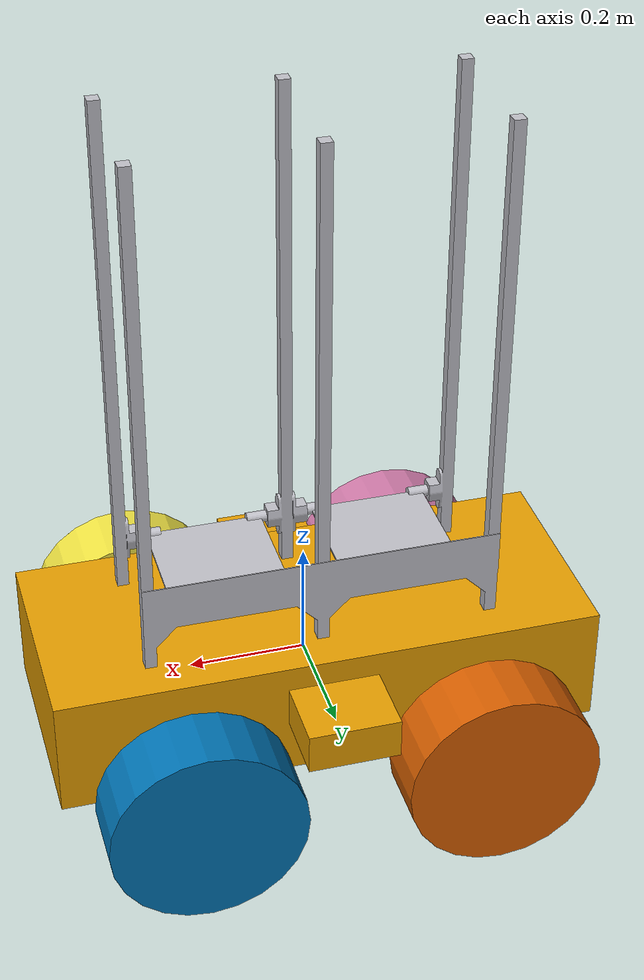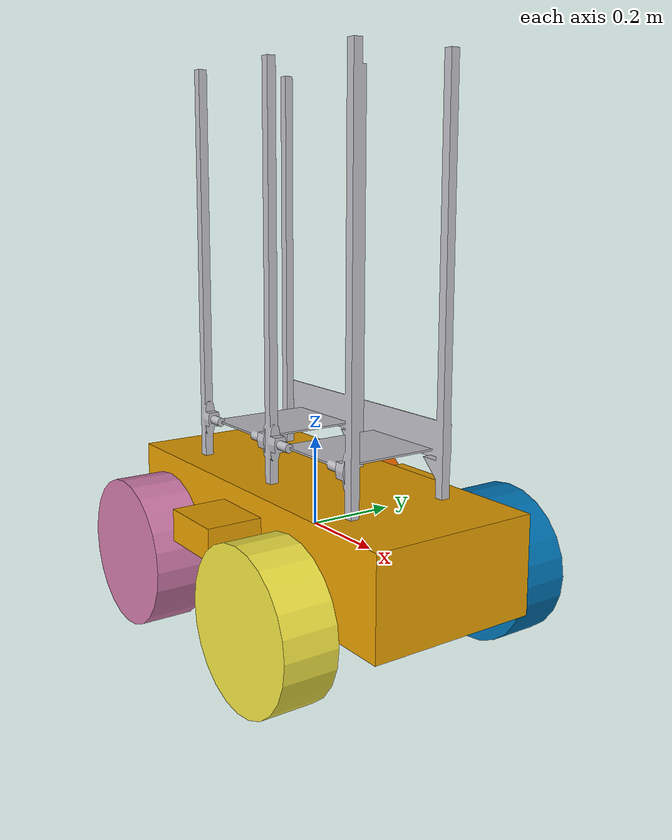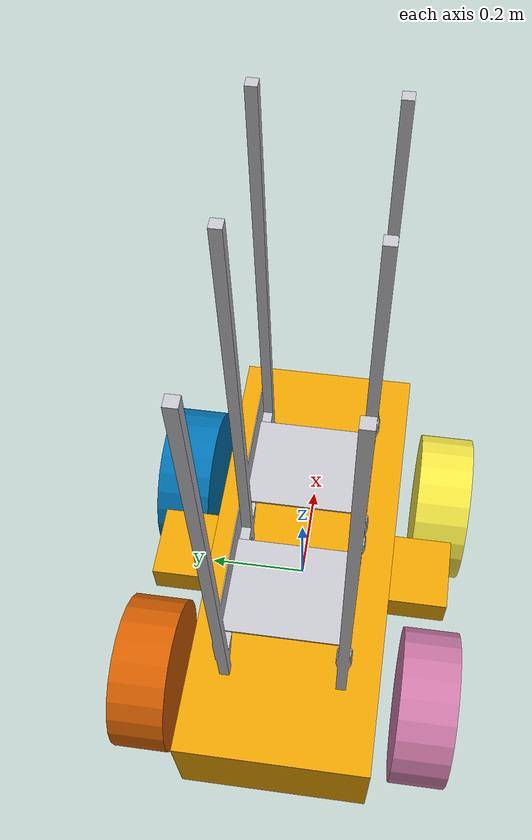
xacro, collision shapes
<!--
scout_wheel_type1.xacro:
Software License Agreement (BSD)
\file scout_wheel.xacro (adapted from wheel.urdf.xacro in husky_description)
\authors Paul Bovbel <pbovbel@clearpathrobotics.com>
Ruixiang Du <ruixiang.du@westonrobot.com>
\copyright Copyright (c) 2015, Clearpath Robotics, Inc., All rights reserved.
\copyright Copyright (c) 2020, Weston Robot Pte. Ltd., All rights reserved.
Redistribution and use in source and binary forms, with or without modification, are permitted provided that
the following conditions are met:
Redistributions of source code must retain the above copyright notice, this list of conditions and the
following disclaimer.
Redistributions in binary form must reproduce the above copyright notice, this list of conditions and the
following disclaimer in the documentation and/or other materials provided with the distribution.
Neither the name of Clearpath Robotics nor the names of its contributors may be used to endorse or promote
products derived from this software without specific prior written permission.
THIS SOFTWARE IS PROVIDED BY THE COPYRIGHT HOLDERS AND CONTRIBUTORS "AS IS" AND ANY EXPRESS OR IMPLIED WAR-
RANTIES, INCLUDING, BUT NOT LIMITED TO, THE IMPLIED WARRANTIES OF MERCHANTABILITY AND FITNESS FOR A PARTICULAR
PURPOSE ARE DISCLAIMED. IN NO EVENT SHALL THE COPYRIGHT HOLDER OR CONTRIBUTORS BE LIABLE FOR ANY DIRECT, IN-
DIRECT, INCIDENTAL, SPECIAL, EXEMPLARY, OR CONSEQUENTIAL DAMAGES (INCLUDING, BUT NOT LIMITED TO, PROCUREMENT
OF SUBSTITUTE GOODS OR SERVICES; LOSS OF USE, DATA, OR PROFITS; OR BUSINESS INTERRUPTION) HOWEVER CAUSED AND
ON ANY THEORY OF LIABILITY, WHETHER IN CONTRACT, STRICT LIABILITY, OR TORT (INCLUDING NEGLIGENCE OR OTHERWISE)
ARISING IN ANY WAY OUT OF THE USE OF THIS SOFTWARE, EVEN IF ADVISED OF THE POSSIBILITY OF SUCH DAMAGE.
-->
<?xml version="1.0"?>

<robot name="scout_v2"
    xmlns:xacro="http://ros.org/wiki/xacro">

    <xacro:arg name="robot_namespace" default="/" />

    <xacro:include filename="$(find wrp_ros2)/urdf/scout_v2/scout_wheel_type1.xacro" />
    <xacro:include filename="$(find wrp_ros2)/urdf/scout_v2/scout_wheel_type2.xacro" />

    <!-- Variables -->
    <xacro:property name="M_PI" value="3.14159"/>

    <!-- Vehicle Geometries -->
    <xacro:property name="base_x_size" value="0.9250000" />
    <xacro:property name="base_y_size" value="0.380000" />
    <xacro:property name="base_z_size" value="0.210000" />

    <xacro:property name="wheelbase" value="0.498" />
    <xacro:property name="track" value="0.58306" />
    <xacro:property name="wheel_vertical_offset" value="-0.0702" />

    <xacro:property name="wheel_length" value="1.1653e-01" />
    <xacro:property name="wheel_radius" value="1.6459e-01" />

    <!-- Base link -->
    <link name="base_link">
        <visual>
            <origin xyz="0 0 0" rpy="0 0 0" />
            <geometry>
                <mesh filename="package://wrp_ros2/meshes/scout_v2/base_link.dae" />
            </geometry>
        </visual>
        <collision>
            <origin xyz="0 0 0.008" rpy="0 0 0" />
            <geometry>
                <box size="${base_x_size} ${base_y_size} ${base_z_size}"/>
            </geometry>
        </collision>
        <collision>
            <origin xyz="0 0 ${base_z_size/6}" rpy="0 0 0" />
            <geometry>
                <box size="${base_x_size/6} ${base_y_size*1.65} ${base_z_size/3}"/>
            </geometry>
        </collision>
    </link>

    <link name="base_footprint"/>

    <joint name="base_footprint_joint" type="fixed">
        <origin xyz="0 0 ${wheel_vertical_offset - wheel_radius}" rpy="0 0 0" />
        <parent link="base_link" />
        <child link="base_footprint" />
    </joint>

    <link name="inertial_link">
        <inertial>
            <mass value="40" />
            <origin xyz="0.0 0.0 0.0" />
            <inertia ixx="2.288641" ixy="0" ixz="0" iyy="5.103976" iyz="0" izz="3.431465" />
        </inertial>
    </link>

    <joint name="inertial_joint" type="fixed">
        <origin xyz="0 0 0" rpy="0 0 0" />
        <parent link="base_link" />
        <child link="inertial_link" />
    </joint>

    <!-- Scout wheel macros -->
    <!-- wheel labeled from 0 to 3, conter-clockwise, starting from front right wheel -->
    <!-- motor 1 and 2 (left side) are mechanically installed in a reversed direction -->
    <xacro:scout_wheel_type1 wheel_prefix="front_right">
        <origin xyz="${wheelbase/2} ${-track/2} ${wheel_vertical_offset}" rpy="3.14 0 0" />
    </xacro:scout_wheel_type1>
    <xacro:scout_wheel_type2 wheel_prefix="front_left">
        <origin xyz="${wheelbase/2} ${track/2} ${wheel_vertical_offset}" rpy="0 0 0" />
    </xacro:scout_wheel_type2>
    <xacro:scout_wheel_type2 wheel_prefix="rear_left">
        <origin xyz="${-wheelbase/2} ${track/2} ${wheel_vertical_offset}" rpy="0 0 0" />
    </xacro:scout_wheel_type2>
    <xacro:scout_wheel_type1 wheel_prefix="rear_right">
        <origin xyz="${-wheelbase/2} ${-track/2} ${wheel_vertical_offset}" rpy="3.14 0 0" />
    </xacro:scout_wheel_type1>

    <!--Bookshelf link-->
    <link name="housing_link">
        <inertial>
            <origin xyz="4.441885699201552e-16 0.003522877274071854 0.4272591239010159" rpy="0 0 0"/>
            <mass value="23.145413468629368"/>
            <inertia ixx="2.468858" iyy="3.369428" izz="1.480915" ixy="0.0" iyz="0.017294" ixz="-0.0"/>
        </inertial>
        <visual>
            <origin xyz="0 0 0" rpy="0 0 0"/>
            <geometry>
                <mesh filename="package://wrp_ros2/meshes/scout_v2/base_link.stl" scale="0.001 0.001 0.001"/>
            </geometry>
            <material name="silver"/>
        </visual>
        <collision>
            <origin xyz="0 0 0" rpy="0 0 0"/>
            <geometry>
                <mesh filename="package://wrp_ros2/meshes/scout_v2/base_link.stl" scale="0.001 0.001 0.001"/>
            </geometry>
        </collision>
    </link>

    <link name="l1_shelf_front_1">
        <inertial>
            <origin xyz="-0.13499999999999998 0.10113687509114784 0.0" rpy="0 0 0"/>
            <mass value="1.7875433317847935"/>
            <inertia ixx="0.01067" iyy="0.008265" izz="0.018916" ixy="0.0" iyz="-0.0" ixz="-0.0"/>
        </inertial>
        <visual>
            <origin xyz="0.01 0.115 -0.204" rpy="0 0 0"/>
            <geometry>
                <mesh filename="package://wrp_ros2/meshes/scout_v2/l1_shelf_front_1.stl" scale="0.001 0.001 0.001"/>
            </geometry>
            <material name="silver"/>
        </visual>
        <collision>
            <origin xyz="0.01 0.115 -0.204" rpy="0 0 0"/>
            <geometry>
                <mesh filename="package://wrp_ros2/meshes/scout_v2/l1_shelf_front_1.stl" scale="0.001 0.001 0.001"/>
            </geometry>
        </collision>
    </link>

    <link name="l1_shelf_back_1">
        <inertial>
            <origin xyz="0.13500000000000004 0.10113687509114783 2.7755575615628914e-17" rpy="0 0 0"/>
            <mass value="1.787543331784794"/>
            <inertia ixx="0.01067" iyy="0.008265" izz="0.018916" ixy="0.0" iyz="0.0" ixz="0.0"/>
        </inertial>
        <visual>
            <origin xyz="-0.01 0.115 -0.204" rpy="0 0 0"/>
            <geometry>
                <mesh filename="package://wrp_ros2/meshes/scout_v2/l1_shelf_back_1.stl" scale="0.001 0.001 0.001"/>
            </geometry>
            <material name="silver"/>
        </visual>
        <collision>
            <origin xyz="-0.01 0.115 -0.204" rpy="0 0 0"/>
            <geometry>
                <mesh filename="package://wrp_ros2/meshes/scout_v2/l1_shelf_back_1.stl" scale="0.001 0.001 0.001"/>
            </geometry>
        </collision>
    </link>

    <!--Bookshelf joint-->
    <joint name="Rev1" type="fixed">
        <origin xyz="-0.01 -0.115 0.204" rpy="0 0 0"/>
        <parent link="housing_link"/>
        <child link="l1_shelf_front_1"/>
        <axis xyz="-1.0 0.0 0.0"/>
    </joint>

    <joint name="Rev2" type="fixed">
        <origin xyz="0.01 -0.115 0.204" rpy="0 0 0"/>
        <parent link="housing_link"/>
        <child link="l1_shelf_back_1"/>
        <axis xyz="1.0 0.0 0.0"/>
    </joint>

    <!--Shelf on Scout joint-->
    <joint name ="scout_shelf_joint" type="fixed">
        <origin xyz="0.00 0.00 0.00" rpy="0 0 0"/>
        <parent link="base_link"/>
        <child link="housing_link"/>
        <axis xyz="-1.0 0.0 0.0"/>
    </joint>

    <!-- ROS 2 Control -->
    <ros2_control name="GazeboSystem" type="system">
        <hardware>
            <plugin>gazebo_ros2_control/GazeboSystem</plugin>
        </hardware>

        <!-- Wheel joints  -->
        <!-- Front Right Wheel Joint  -->
        <joint name="front_right_wheel">
            <command_interface name="velocity">
                <param name="min">-1</param>
                <param name="max">1</param>
            </command_interface>
            <state_interface name="position"/>
            <state_interface name="velocity"/>
        </joint>

         <!-- Front Left Wheel Joint  -->
        <joint name="front_left_wheel">
            <command_interface name="velocity">
                <param name="min">-1</param>
                <param name="max">1</param>
            </command_interface>
            <state_interface name="position"/>
            <state_interface name="velocity"/>
        </joint>

         <!-- Rear Right Wheel Joint  -->
        <joint name="rear_right_wheel">
            <command_interface name="velocity">
                <param name="min">-1</param>
                <param name="max">1</param>
            </command_interface>
            <state_interface name="position"/>
            <state_interface name="velocity"/>
        </joint>

         <!-- Rear Left Wheel Joint  -->
        <joint name="rear_left_wheel">
            <command_interface name="velocity">
                <param name="min">-1</param>
                <param name="max">1</param>
            </command_interface>
            <state_interface name="position"/>
            <state_interface name="velocity"/>
        </joint>
    </ros2_control>

    <gazebo>
        <plugin filename="libgazebo_ros2_control.so" name="gazebo_ros2_control">
            <parameters>$(find bss_shelf_bringup)/config/scout_v2_diff_drive_control.yaml</parameters>
        </plugin>
    </gazebo>

</robot>

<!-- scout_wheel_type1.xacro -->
<robot xmlns:xacro="http://ros.org/wiki/xacro" name="scout_wheel">

    <xacro:macro name="scout_wheel_type1" params="wheel_prefix *joint_pose">
        <link name="${wheel_prefix}_wheel_link">
            <inertial>
                <mass value="3" />
                <origin xyz="0 0 0" />
                <inertia ixx="0.7171" ixy="0" ixz="0" iyy="0.1361" iyz="0" izz="0.7171" />
            </inertial>
            <visual>
                <origin xyz="0 0 0" rpy="0 0 0" />
                <geometry>
                    <mesh filename="package://bss_shelf_bringup/meshes/scout_v2/wheel_type1.dae" />
                </geometry>
            </visual>
            <collision>
                <origin xyz="0 0 0" rpy="${M_PI/2} 0 0" />
                <geometry>
                    <cylinder length="${wheel_length}" radius="${wheel_radius}" />
                </geometry>
            </collision>
        </link>

        <joint name="${wheel_prefix}_wheel" type="continuous">
            <parent link="base_link"/>
            <child link="${wheel_prefix}_wheel_link"/>
            <xacro:insert_block name="joint_pose"/>
            <axis xyz="0 1 0" rpy="0 0 0" />
            <limit effort="1" velocity="1"/>
            <joint_properties damping="1.0" friction="1.0"/>
        </joint>
    </xacro:macro>

</robot>

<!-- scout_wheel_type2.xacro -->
<robot xmlns:xacro="http://ros.org/wiki/xacro" name="scout_wheel">

    <xacro:macro name="scout_wheel_type2" params="wheel_prefix *joint_pose">
        <link name="${wheel_prefix}_wheel_link">
            <inertial>
                <mass value="3" />
                <origin xyz="0 0 0" />
                <inertia ixx="0.7171" ixy="0" ixz="0" iyy="0.1361" iyz="0" izz="0.7171" />
            </inertial>
            <visual>
                <origin xyz="0 0 0" rpy="0 0 0" />
                <geometry>
                    <mesh filename="package://bss_shelf_bringup/meshes/scout_v2/wheel_type2.dae" />
                </geometry>
            </visual>
            <collision>
                <origin xyz="0 0 0" rpy="${M_PI/2} 0 0" />
                <geometry>
                    <cylinder length="${wheel_length}" radius="${wheel_radius}" />
                </geometry>
            </collision>
        </link>

        <joint name="${wheel_prefix}_wheel" type="continuous">
            <parent link="base_link"/>
            <child link="${wheel_prefix}_wheel_link"/>
            <xacro:insert_block name="joint_pose"/>
            <axis xyz="0 1 0" rpy="0 0 0" />
            <limit effort="1" velocity="1"/>
            <joint_properties damping="1.0" friction="1.0"/>
        </joint>
    </xacro:macro>

</robot>
